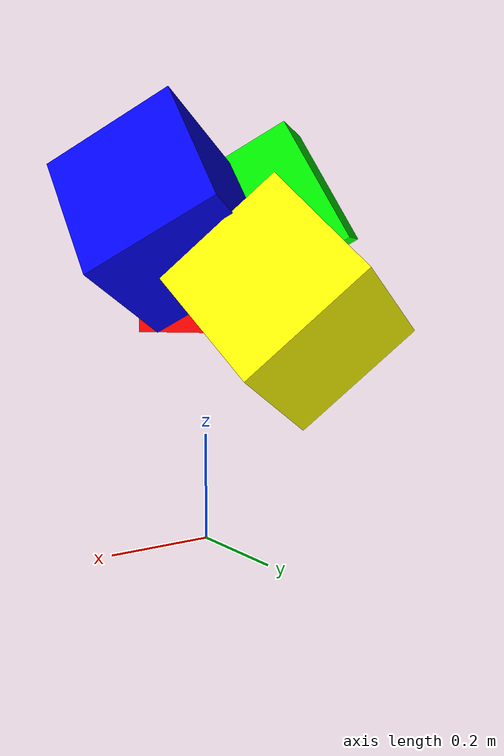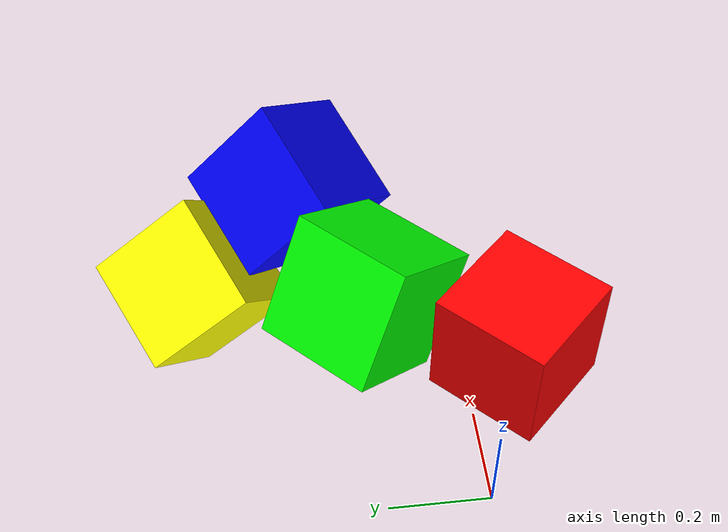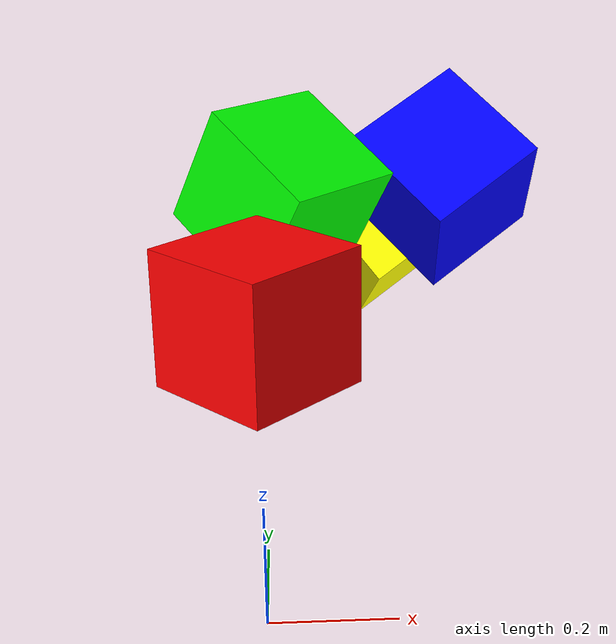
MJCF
<mujoco model="four_cube_chain">
  <compiler angle="radian" />

  <option timestep="0.01" gravity="0 0 -9.8"/>

  <worldbody>
    <!-- Base cube (fixed) - rotated 45 degrees around Z -->
    <body name="base" pos="0 0 0.5" quat="0.9239 0 0 0.3827">
      <geom name="base_geom" type="box" size="0.1 0.1 0.1" rgba="1 0 0 1" contype="1" conaffinity="1"/>
      <inertial pos="0 0 0" mass="1" diaginertia="0.0067 0.0067 0.0067"/>

      <!-- Joint 1: Revolute joint connecting base to cube1, rotates around Y axis -->
      <!-- Joint frame offset with rotation -->
      <body name="cube1" pos="0.2 0.15 0.1" quat="0.9659 0.2588 0 0">
        <joint name="joint1" type="hinge" axis="0 1 0" range="-3.14 3.14" damping="0.1"/>
        <geom name="cube1_geom" type="box" size="0.1 0.1 0.1" rgba="0 1 0 1" contype="1" conaffinity="1"/>
        <inertial pos="0 0 0" mass="1" diaginertia="0.0067 0.0067 0.0067"/>

        <!-- Joint 2: Fixed joint (no joint element, making cube2 fixed to cube1) -->
        <!-- Cube2 is at an angle relative to cube1 -->
        <body name="cube2" pos="0.25 -0.1 0.05" quat="0.8660 0 0.5 0">
          <!-- No joint element = fixed joint -->
          <geom name="cube2_geom" type="box" size="0.1 0.1 0.1" rgba="0 0 1 1" contype="1" conaffinity="1"/>
          <inertial pos="0 0 0" mass="1" diaginertia="0.0067 0.0067 0.0067"/>

          <!-- Joint 3: Prismatic joint connecting cube2 to cube3, slides along local X -->
          <!-- Joint frame is rotated 30 degrees around Z -->
          <body name="cube3" pos="0.2 0.1 -0.05" quat="0.9914 0 0 0.1305">
            <joint name="joint3" type="slide" axis="1 0 0" range="-0.3 0.3" damping="0.1"/>
            <geom name="cube3_geom" type="box" size="0.1 0.1 0.1" rgba="1 1 0 1" contype="1" conaffinity="1"/>
            <inertial pos="0 0 0" mass="1" diaginertia="0.0067 0.0067 0.0067"/>
          </body>
        </body>
      </body>
    </body>
  </worldbody>
</mujoco>
